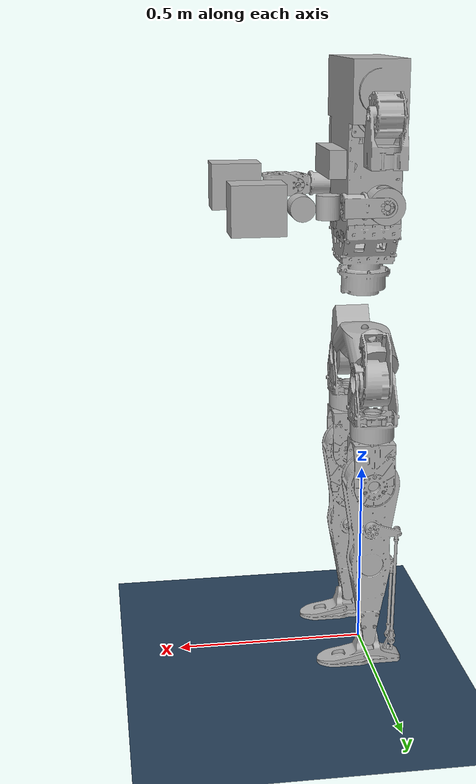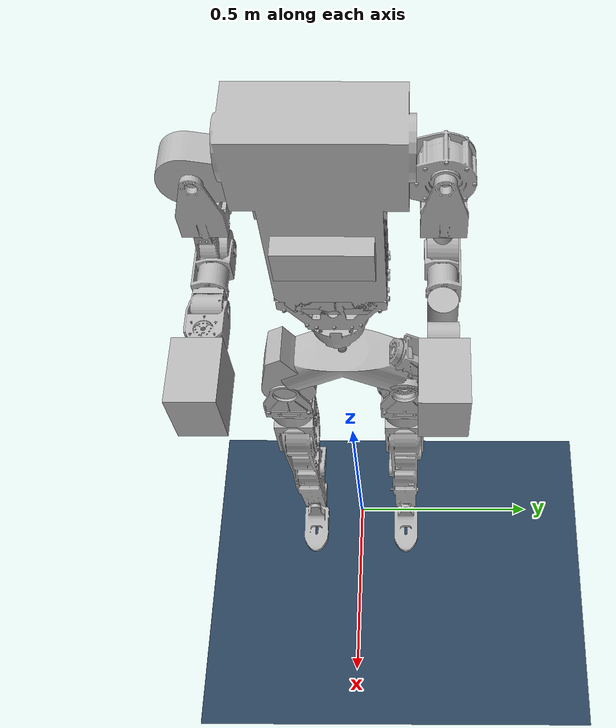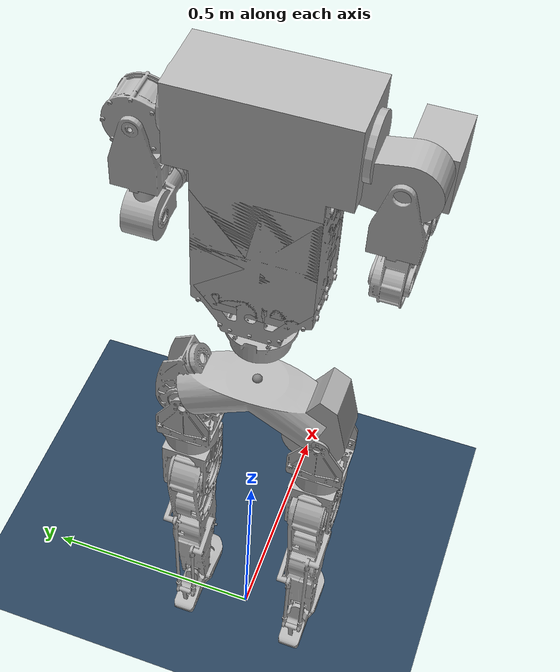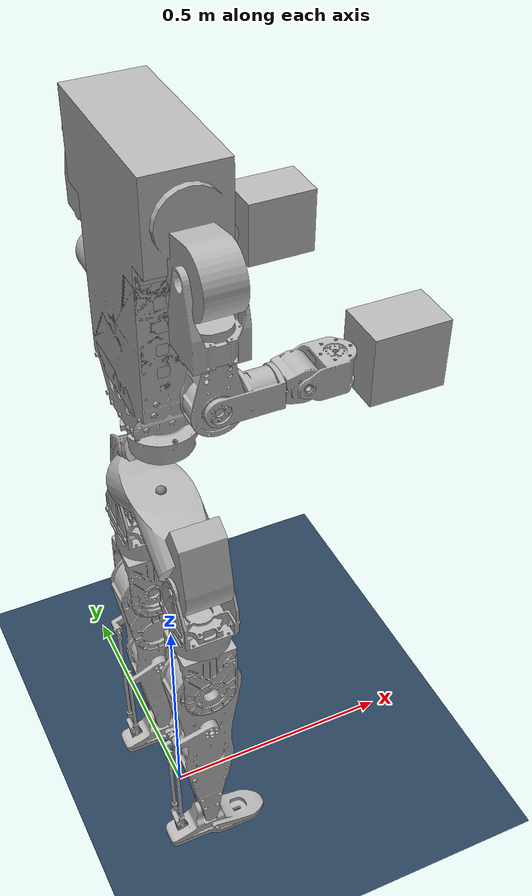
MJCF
<?xml version='1.0' encoding='utf-8'?>
<mujoco model="robot8">
  <default>
    <default class="robot">
      <default class="visual">
        <geom contype="0" conaffinity="0" group="2" />
      </default>
      <default class="collision">
        <geom contype="0" conaffinity="1" group="3" />
      </default>
    </default>
    <default class="floor">
      <geom type="plane" size="0 0 0.05" material="groundplane" />
    </default>
  </default>
  <compiler angle="radian" meshdir="." balanceinertia="true" />
  <visual>
    <global offwidth="3840" offheight="2160" />
  </visual>
  <worldbody>
    <body name="pelvis_link" childclass="robot" pos="0 0 0.8883">
      <geom name="pelvis_link_collision" type="mesh" mesh="collision_pelvis_link" class="collision" />
      <geom name="pelvis_link_visual" type="mesh" mesh="pelvis_link_pelvis_link" material="default_material" class="visual" />
      <site name="imu_in_pelvis" size="0.01" pos="0 0 0" />
      <body name="right_hip_pitch_link" pos="0.0074336 -0.11245 0.0042898" quat="0.9659 0.2588 0 0">
        <inertial pos="2.851291e-03 -7.270662e-02 -7.549797e-02" mass="2.482675e+00" fullinertia="5.230052e-03 3.317421e-03 2.781066e-03 9.632072e-05 2.170916e-05 -4.154381e-04" />
        <joint name="right_hip_pitch_joint" type="hinge" range="-1 0.5" axis="0 1 0" actuatorfrcrange="-96 96" armature="0.04" />
        <geom name="right_hip_pitch_link_collision" type="mesh" mesh="collision_right_hip_pitch_link" class="collision" />
        <geom name="right_hip_pitch_link_visual" type="mesh" mesh="right_hip_pitch_link_right_hip_pitch_link" material="default_material" class="visual" />
        <body name="right_hip_roll_link" pos="0.0295 -0.07681 -0.080942" quat="0.9659 -0.2588 0 0">
          <inertial pos="-3.011412e-02 1.428602e-04 -1.059386e-01" mass="1.960130e+00" fullinertia="2.044478e-03 1.787449e-03 2.559671e-03 -4.613806e-17 2.183328e-05 1.681807e-06" />
          <joint name="right_hip_roll_joint" type="hinge" range="-0.5 0.5" axis="1 0 0" actuatorfrcrange="-96 96" armature="0.04" />
          <geom name="right_hip_roll_link_collision" type="mesh" mesh="collision_right_hip_roll_link" class="collision" />
          <geom name="right_hip_roll_link_visual" type="mesh" mesh="right_hip_roll_link_right_hip_roll_link" material="default_material" class="visual" />
          <body name="right_hip_yaw_link" pos="-0.0295 0 -0.1463">
            <inertial pos="1.372798e-04 2.740290e-03 -6.347166e-02" mass="6.214370e-01" fullinertia="1.020055e-03 1.407074e-03 8.678616e-04 1.345473e-07 -8.304894e-07 -1.010576e-05" />
            <joint name="right_hip_yaw_joint" type="hinge" range="-0.5 0.5" axis="0 0 1" actuatorfrcrange="-48 48" armature="0.02" />
            <geom name="right_hip_yaw_link_collision" type="mesh" mesh="collision_right_hip_yaw_link" class="collision" />
            <geom name="right_hip_yaw_link_visual" type="mesh" mesh="right_hip_yaw_link_right_hip_yaw_link" material="default_material" class="visual" />
            <body name="right_knee_link" pos="0 -0.032 -0.12269">
              <inertial pos="-3.615045e-03 3.366082e-02 -1.255761e-01" mass="5.873170e+00" fullinertia="1.585211e-02 1.985684e-02 5.487068e-03 1.179977e-07 1.979255e-06 2.332131e-05" />
              <joint name="right_knee_joint" type="hinge" range="-0.5 1" axis="0 1 0" actuatorfrcrange="-96 96" armature="0.04" />
              <geom name="right_knee_link_collision" type="mesh" mesh="collision_right_knee_link" class="collision" />
              <geom name="right_knee_link_visual" type="mesh" mesh="right_knee_link_right_knee_link" material="default_material" class="visual" />
              <body name="right_ankle_pitch_link" pos="-5.1941E-05 0.035 -0.4435">
                <inertial pos="5.364409e-09 -5.364413e-09 0.000000e+00" mass="1.481921e-01" fullinertia="2.726450e-05 2.726450e-05 4.854011e-05 -4.351823e-18 -2.144078e-12 -2.144078e-12" />
                <joint name="right_ankle_pitch_joint" type="hinge" range="-0.5 0.5" axis="0 1 0" actuatorfrcrange="-29 29" armature="0.012" />
                <geom name="right_ankle_pitch_link_collision" type="mesh" mesh="collision_right_ankle_pitch_link" class="collision" />
                <geom name="right_ankle_pitch_link_visual" type="mesh" mesh="right_ankle_pitch_link_right_ankle_pitch_link" material="default_material" class="visual" />
                <body name="right_ankle_roll_link">
                  <inertial pos="1.083003e-02 3.951433e-07 -4.405085e-02" mass="6.288107e-01" fullinertia="2.386819e-04 1.667869e-03 1.801760e-03 -2.314975e-09 4.463140e-05 -8.286391e-11" />
                  <joint name="right_ankle_roll_joint" type="hinge" range="-0.5 0.5" axis="1 0 0" actuatorfrcrange="-29 29" armature="0.012" />
                  <geom name="right_ankle_roll_link_collision" type="mesh" mesh="collision_right_ankle_roll_link" class="collision" />
                  <geom name="right_ankle_roll_link_visual" type="mesh" mesh="right_ankle_roll_link_right_ankle_roll_link" material="default_material" class="visual" />
                </body>
              </body>
            </body>
          </body>
        </body>
      </body>
      <body name="left_hip_pitch_link" pos="0.0074336 0.11245 0.0042898" quat="0.9659 -0.2588 0 0">
        <inertial pos="3.103628e-03 7.273415e-02 -7.530297e-02" mass="2.476973e+00" fullinertia="5.230662e-03 3.314818e-03 2.779870e-03 -9.627197e-05 2.161898e-05 4.156594e-04" />
        <joint name="left_hip_pitch_joint" type="hinge" range="-1 0.5" axis="0 1 0" actuatorfrcrange="-96 96" armature="0.04" />
        <geom name="left_hip_pitch_link_collision" type="mesh" mesh="collision_left_hip_pitch_link" class="collision" />
        <geom name="left_hip_pitch_link_visual" type="mesh" mesh="left_hip_pitch_link_left_hip_pitch_link" material="default_material" class="visual" />
        <body name="left_hip_roll_link" pos="0.0295 0.07681 -0.080942" quat="0.9659 0.2588 0 0">
          <inertial pos="-3.011412e-02 1.428602e-04 -1.059386e-01" mass="1.960130e+00" fullinertia="2.044478e-03 1.787449e-03 2.559671e-03 -3.491665e-17 2.183328e-05 1.681807e-06" />
          <joint name="left_hip_roll_joint" type="hinge" range="-0.5 0.5" axis="1 0 0" actuatorfrcrange="-96 96" armature="0.04" />
          <geom name="left_hip_roll_link_collision" type="mesh" mesh="collision_left_hip_roll_link" class="collision" />
          <geom name="left_hip_roll_link_visual" type="mesh" mesh="left_hip_roll_link_left_hip_roll_link" material="default_material" class="visual" />
          <body name="left_hip_yaw_link" pos="-0.0295 0 -0.1463">
            <inertial pos="1.372798e-04 -2.740290e-03 -6.347166e-02" mass="6.214370e-01" fullinertia="1.020055e-03 1.407074e-03 8.678616e-04 -1.345525e-07 -8.304894e-07 1.010576e-05" />
            <joint name="left_hip_yaw_joint" type="hinge" range="-0.5 0.5" axis="0 0 1" actuatorfrcrange="-48 48" armature="0.02" />
            <geom name="left_hip_yaw_link_collision" type="mesh" mesh="collision_left_hip_yaw_link" class="collision" />
            <geom name="left_hip_yaw_link_visual" type="mesh" mesh="left_hip_yaw_link_left_hip_yaw_link" material="default_material" class="visual" />
            <body name="left_knee_link" pos="0 0.034125 -0.1227">
              <inertial pos="-3.322424e-03 -3.578619e-02 -1.265389e-01" mass="5.877917e+00" fullinertia="1.585882e-02 1.985710e-02 5.488483e-03 1.953584e-07 -3.300153e-06 -2.345089e-05" />
              <joint name="left_knee_joint" type="hinge" range="-0.5 1" axis="0 1 0" actuatorfrcrange="-96 96" armature="0.04" />
              <geom name="left_knee_link_collision" type="mesh" mesh="collision_left_knee_link" class="collision" />
              <geom name="left_knee_link_visual" type="mesh" mesh="left_knee_link_left_knee_link" material="default_material" class="visual" />
              <body name="left_ankle_pitch_link" pos="0 -0.036877 -0.4435">
                <inertial pos="5.364411e-09 -5.364404e-09 -5.107026e-15" mass="1.481921e-01" fullinertia="2.726450e-05 2.726450e-05 4.854011e-05 -4.950226e-18 3.683798e-12 -2.144078e-12" />
                <joint name="left_ankle_pitch_joint" type="hinge" range="-0.5 0.5" axis="0 1 0" actuatorfrcrange="-29 29" armature="0.012" />
                <geom name="left_ankle_pitch_link_collision" type="mesh" mesh="collision_left_ankle_pitch_link" class="collision" />
                <geom name="left_ankle_pitch_link_visual" type="mesh" mesh="left_ankle_pitch_link_left_ankle_pitch_link" material="default_material" class="visual" />
                <body name="left_ankle_roll_link">
                  <inertial pos="1.083009e-02 3.719836e-07 -4.405086e-02" mass="6.288094e-01" fullinertia="2.386813e-04 1.667866e-03 1.801757e-03 -2.594108e-09 4.463167e-05 2.016767e-10" />
                  <joint name="left_ankle_roll_joint" type="hinge" range="-0.5 0.5" axis="1 0 0" actuatorfrcrange="-29 29" armature="0.012" />
                  <geom name="left_ankle_roll_link_collision" type="mesh" mesh="collision_left_ankle_roll_link" class="collision" />
                  <geom name="left_ankle_roll_link_visual" type="mesh" mesh="left_ankle_roll_link_left_ankle_roll_link" material="default_material" class="visual" />
                </body>
              </body>
            </body>
          </body>
        </body>
      </body>
      <body name="waist_yaw_link" pos="0.0074336 0 0.095182">
        <inertial pos="8.134900e-03 -2.482000e-04 2.834100e-01" mass="1.486400e+01" fullinertia="6.528500e-02 4.811100e-02 4.465800e-02 1.802000e-07 -2.143500e-05 -2.965000e-06" />
        <joint name="waist_yaw_joint" type="hinge" range="-1 1" axis="0 0 1" actuatorfrcrange="-48 48" armature="0.02" />
        <geom name="waist_yaw_link_collision" type="mesh" mesh="collision_waist_yaw_link" class="collision" />
        <geom name="waist_yaw_link_visual" type="mesh" mesh="waist_yaw_link_waist_yaw_link" material="default_material" class="visual" />
        <body name="waist_roll_link" pos="0 0 0.1409">
          <inertial pos="6.673100e-02 3.301800e-15 -2.775600e-17" mass="2.149700e-03" fullinertia="1.019700e-08 4.023200e-08 4.023200e-08 -1.293600e-21 -1.051000e-24 -3.741400e-26" />
          <geom name="waist_roll_link_collision" type="mesh" mesh="collision_waist_roll_link" class="collision" />
          <geom name="waist_roll_link_visual" type="mesh" mesh="waist_roll_link_waist_roll_link" material="default_material" class="visual" />
          <body name="torso_link">
            <inertial pos="3.469400e-18 4.447400e-16 -5.276900e-02" mass="2.149700e-03" fullinertia="4.023200e-08 4.023200e-08 1.019700e-08 -1.919700e-25 -4.383000e-24 -2.960900e-24" />
            <geom name="torso_link_collision" type="mesh" mesh="collision_torso_link" class="collision" />
            <geom name="torso_link_visual" type="mesh" mesh="torso_link_torso_link" material="default_material" class="visual" />
            <body name="right_shoulder_pitch_link" pos="0 -0.1445 0.3245">
              <inertial pos="-7.984549e-04 -1.862673e-02 1.720146e-04" mass="2.557416e+00" fullinertia="2.517872e-03 2.260213e-03 2.133541e-03 -3.983996e-05 -8.750972e-06 -4.340031e-07" />
              <joint name="right_shoulder_pitch_joint" type="hinge" range="-2 2" axis="0 1 0" actuatorfrcrange="-48 48" armature="0.02" />
              <geom name="right_shoulder_pitch_link_collision" type="mesh" mesh="collision_right_shoulder_pitch_link" class="collision" />
              <geom name="right_shoulder_pitch_link_visual" type="mesh" mesh="right_shoulder_pitch_link_right_shoulder_pitch_link" material="default_material" class="visual" />
              <body name="right_shoulder_roll_link" pos="0.0010009 -0.07 0">
                <inertial pos="7.427735e-04 -6.884930e-10 -8.785344e-02" mass="8.767783e-01" fullinertia="9.390930e-04 8.083363e-04 6.765176e-04 1.429287e-10 6.121165e-06 1.391971e-10" />
                <joint name="right_shoulder_roll_joint" type="hinge" range="-3 0" axis="1 0 0" actuatorfrcrange="-48 48" armature="0.02" />
                <geom name="right_shoulder_roll_link_collision" type="mesh" mesh="collision_right_shoulder_roll_link" class="collision" />
                <geom name="right_shoulder_roll_link_visual" type="mesh" mesh="right_shoulder_roll_link_right_shoulder_roll_link" material="default_material" class="visual" />
                <body name="right_shoulder_yaw_link" pos="0 0 -0.1215">
                  <inertial pos="3.419245e-04 -4.168101e-04 -7.932543e-02" mass="8.095493e-01" fullinertia="5.669025e-04 7.578699e-04 4.648783e-04 -5.550582e-08 7.355877e-09 -1.767385e-05" />
                  <joint name="right_shoulder_yaw_joint" type="hinge" range="-1.5 0.5" axis="0 0 1" actuatorfrcrange="-29 29" armature="0.012" />
                  <geom name="right_shoulder_yaw_link_collision" type="mesh" mesh="collision_right_shoulder_yaw_link" class="collision" />
                  <geom name="right_shoulder_yaw_link_visual" type="mesh" mesh="right_shoulder_yaw_link_right_shoulder_yaw_link" material="default_material" class="visual" />
                  <body name="right_elbow_link" pos="0 0 -0.0885">
                    <inertial pos="6.185003e-02 -1.045038e-03 4.029419e-05" mass="4.969697e-01" fullinertia="2.292525e-04 3.545232e-04 3.647221e-04 -2.017591e-05 -4.800208e-10 -4.005728e-09" />
                    <joint name="right_elbow_joint" type="hinge" range="0 3" axis="0 1 0" actuatorfrcrange="-29 29" armature="0.012" />
                    <geom name="right_elbow_link_collision" type="mesh" mesh="collision_right_elbow_link" class="collision" />
                    <geom name="right_elbow_link_visual" type="mesh" mesh="right_elbow_link_right_elbow_link" material="default_material" class="visual" />
                    <body name="right_wrist_roll_link" pos="0.1005 0 0">
                      <inertial pos="3.598113e-02 -1.448435e-03 2.883170e-07" mass="3.922510e-01" fullinertia="1.805598e-04 1.744848e-04 1.898739e-04 4.356605e-06 -3.368103e-09 1.915070e-09" />
                      <joint name="right_wrist_roll_joint" type="hinge" range="-1 1" axis="1 0 0" actuatorfrcrange="-12 12" armature="0.001" />
                      <geom name="right_wrist_roll_link_collision" type="mesh" mesh="collision_right_wrist_roll_link" class="collision" />
                      <geom name="right_wrist_roll_link_visual" type="mesh" mesh="right_wrist_roll_link_right_wrist_roll_link" material="default_material" class="visual" />
                      <body name="right_wrist_yaw_link" pos="0.0395 0 0">
                        <inertial pos="5.030711e-02 -1.318183e-03 -8.559664e-04" mass="5.039785e-01" fullinertia="2.408832e-04 2.665494e-04 2.890032e-04 1.726206e-06 -2.273157e-06 3.173818e-05" />
                        <joint name="right_wrist_yaw_joint" type="hinge" range="-1 1" axis="0 1 0" actuatorfrcrange="-12 12" armature="0.001" />
                        <geom name="right_wrist_yaw_link_collision" type="mesh" mesh="collision_right_wrist_yaw_link" class="collision" />
                        <geom name="right_wrist_yaw_link_visual" type="mesh" mesh="right_wrist_yaw_link_right_wrist_yaw_link" material="default_material" class="visual" />
                        <body name="right_wrist_pitch_link" pos="0.06 0 0">
                          <inertial pos="2.984486e-02 1.738477e-09 2.748858e-03" mass="1.018444e-01" fullinertia="4.190877e-05 3.487658e-05 3.328346e-05 -1.771119e-12 -3.966417e-07 5.752220e-13" />
                          <joint name="right_wrist_pitch_joint" type="hinge" range="-1 1" axis="0 0 1" actuatorfrcrange="-12 12" armature="0.001" />
                          <geom name="right_wrist_pitch_link_collision" type="mesh" mesh="collision_right_wrist_pitch_link" class="collision" />
                          <geom name="right_wrist_pitch_link_visual" type="mesh" mesh="right_wrist_pitch_link_right_wrist_pitch_link" material="default_material" class="visual" />
                        </body>
                      </body>
                    </body>
                  </body>
                </body>
              </body>
            </body>
            <body name="left_shoulder_pitch_link" pos="0 0.1445 0.3245">
              <inertial pos="-6.080708e-04 1.884962e-02 3.658989e-04" mass="2.568560e+00" fullinertia="2.550273e-03 2.271530e-03 2.135081e-03 4.097817e-05 3.180192e-06 3.618582e-06" />
              <joint name="left_shoulder_pitch_joint" type="hinge" range="-2 2" axis="0 1 0" actuatorfrcrange="-48 48" armature="0.02" />
              <geom name="left_shoulder_pitch_link_collision" type="mesh" mesh="collision_left_shoulder_pitch_link" class="collision" />
              <geom name="left_shoulder_pitch_link_visual" type="mesh" mesh="left_shoulder_pitch_link_left_shoulder_pitch_link" material="default_material" class="visual" />
              <body name="left_shoulder_roll_link" pos="0.0010009 0.07 0">
                <inertial pos="7.427735e-04 -6.884824e-10 -8.785344e-02" mass="8.767783e-01" fullinertia="9.390930e-04 8.083363e-04 6.765176e-04 1.429287e-10 6.121165e-06 1.391971e-10" />
                <joint name="left_shoulder_roll_joint" type="hinge" range="0 3" axis="1 0 0" actuatorfrcrange="-48 48" armature="0.02" />
                <geom name="left_shoulder_roll_link_collision" type="mesh" mesh="collision_left_shoulder_roll_link" class="collision" />
                <geom name="left_shoulder_roll_link_visual" type="mesh" mesh="left_shoulder_roll_link_left_shoulder_roll_link" material="default_material" class="visual" />
                <body name="left_shoulder_yaw_link" pos="0 0 -0.1215">
                  <inertial pos="2.642164e-04 4.201003e-04 -7.942572e-02" mass="8.074728e-01" fullinertia="5.694276e-04 7.665871e-04 4.717931e-04 1.099504e-06 -4.221605e-06 1.830800e-05" />
                  <joint name="left_shoulder_yaw_joint" type="hinge" range="-0.5 1.5" axis="0 0 1" actuatorfrcrange="-29 29" armature="0.012" />
                  <geom name="left_shoulder_yaw_link_collision" type="mesh" mesh="collision_left_shoulder_yaw_link" class="collision" />
                  <geom name="left_shoulder_yaw_link_visual" type="mesh" mesh="left_shoulder_yaw_link_left_shoulder_yaw_link" material="default_material" class="visual" />
                  <body name="left_elbow_link" pos="0 0.001125 -0.0885">
                    <inertial pos="6.185864e-02 -7.950896e-05 4.029419e-05" mass="4.969697e-01" fullinertia="2.292525e-04 3.545232e-04 3.647221e-04 2.017979e-05 -4.800208e-10 3.304747e-08" />
                    <joint name="left_elbow_joint" type="hinge" range="0 3" axis="0 1 0" actuatorfrcrange="-29 29" armature="0.012" />
                    <geom name="left_elbow_link_collision" type="mesh" mesh="collision_left_elbow_link" class="collision" />
                    <geom name="left_elbow_link_visual" type="mesh" mesh="left_elbow_link_left_elbow_link" material="default_material" class="visual" />
                    <body name="left_wrist_roll_link" pos="0.1005 -0.001125 0">
                      <inertial pos="3.598113e-02 1.448433e-03 2.881593e-07" mass="3.922510e-01" fullinertia="1.805598e-04 1.744848e-04 1.898739e-04 -4.356608e-06 -3.240964e-08 -1.924738e-09" />
                      <joint name="left_wrist_roll_joint" type="hinge" range="-1 1" axis="1 0 0" actuatorfrcrange="-12 12" armature="0.001" />
                      <geom name="left_wrist_roll_link_collision" type="mesh" mesh="collision_left_wrist_roll_link" class="collision" />
                      <geom name="left_wrist_roll_link_visual" type="mesh" mesh="left_wrist_roll_link_left_wrist_roll_link" material="default_material" class="visual" />
                      <body name="left_wrist_yaw_link" pos="0.0395 0 0">
                        <inertial pos="5.030716e-02 1.318190e-03 -8.559664e-04" mass="5.039785e-01" fullinertia="2.408419e-04 2.665908e-04 2.890032e-04 -1.571917e-06 -2.272658e-06 -3.173811e-05" />
                        <joint name="left_wrist_yaw_joint" type="hinge" range="-1 1" axis="0 1 0" actuatorfrcrange="-12 12" armature="0.001" />
                        <geom name="left_wrist_yaw_link_collision" type="mesh" mesh="collision_left_wrist_yaw_link" class="collision" />
                        <geom name="left_wrist_yaw_link_visual" type="mesh" mesh="left_wrist_yaw_link_left_wrist_yaw_link" material="default_material" class="visual" />
                        <body name="left_wrist_pitch_link" pos="0.06 0 0">
                          <inertial pos="2.984486e-02 1.738482e-09 2.748858e-03" mass="1.018444e-01" fullinertia="4.190877e-05 3.487658e-05 3.328346e-05 -1.771119e-12 -3.966417e-07 5.752220e-13" />
                          <joint name="left_wrist_pitch_joint" type="hinge" range="-1 1" axis="0 0 1" actuatorfrcrange="-12 12" armature="0.001" />
                          <geom name="left_wrist_pitch_link_collision" type="mesh" mesh="collision_left_wrist_pitch_link" class="collision" />
                          <geom name="left_wrist_pitch_link_visual" type="mesh" mesh="left_wrist_pitch_link_left_wrist_pitch_link" material="default_material" class="visual" />
                        </body>
                      </body>
                    </body>
                  </body>
                </body>
              </body>
            </body>
          </body>
        </body>
      </body>
      <freejoint name="floating_base" />
      <inertial pos="5.034353e-03 1.300917e-04 2.253638e-02" mass="4.702896e+00" fullinertia="5.112003e-03 6.643517e-03 5.300545e-03 6.969807e-07 -8.271640e-06 5.172334e-08" />
    </body>
    <light pos="0 0 2." dir="0 0 -1" directional="true" />
    <geom name="floor" class="floor" size="0 0 0.05" />
  </worldbody>
  <asset>
    <material name="default_material" rgba="0.7 0.7 0.7 1" />
    <mesh name="collision_pelvis_link" file="meshes/pelvis_link.STL" />
    <mesh name="pelvis_link_pelvis_link" file="meshes/pelvis_link.STL" />
    <mesh name="collision_right_hip_pitch_link" file="meshes/right_hip_pitch_link.STL" />
    <mesh name="right_hip_pitch_link_right_hip_pitch_link" file="meshes/right_hip_pitch_link.STL" />
    <mesh name="collision_right_hip_roll_link" file="meshes/right_hip_roll_link.STL" />
    <mesh name="right_hip_roll_link_right_hip_roll_link" file="meshes/right_hip_roll_link.STL" />
    <mesh name="collision_right_hip_yaw_link" file="meshes/right_hip_yaw_link.STL" />
    <mesh name="right_hip_yaw_link_right_hip_yaw_link" file="meshes/right_hip_yaw_link.STL" />
    <mesh name="collision_right_knee_link" file="meshes/right_knee_link.STL" />
    <mesh name="right_knee_link_right_knee_link" file="meshes/right_knee_link.STL" />
    <mesh name="collision_right_ankle_pitch_link" file="meshes/right_ankle_pitch_link.STL" />
    <mesh name="right_ankle_pitch_link_right_ankle_pitch_link" file="meshes/right_ankle_pitch_link.STL" />
    <mesh name="collision_right_ankle_roll_link" file="meshes/right_ankle_roll_link.STL" />
    <mesh name="right_ankle_roll_link_right_ankle_roll_link" file="meshes/right_ankle_roll_link.STL" />
    <mesh name="collision_left_hip_pitch_link" file="meshes/left_hip_pitch_link.STL" />
    <mesh name="left_hip_pitch_link_left_hip_pitch_link" file="meshes/left_hip_pitch_link.STL" />
    <mesh name="collision_left_hip_roll_link" file="meshes/left_hip_roll_link.STL" />
    <mesh name="left_hip_roll_link_left_hip_roll_link" file="meshes/left_hip_roll_link.STL" />
    <mesh name="collision_left_hip_yaw_link" file="meshes/left_hip_yaw_link.STL" />
    <mesh name="left_hip_yaw_link_left_hip_yaw_link" file="meshes/left_hip_yaw_link.STL" />
    <mesh name="collision_left_knee_link" file="meshes/left_knee_link.STL" />
    <mesh name="left_knee_link_left_knee_link" file="meshes/left_knee_link.STL" />
    <mesh name="collision_left_ankle_pitch_link" file="meshes/left_ankle_pitch_link.STL" />
    <mesh name="left_ankle_pitch_link_left_ankle_pitch_link" file="meshes/left_ankle_pitch_link.STL" />
    <mesh name="collision_left_ankle_roll_link" file="meshes/left_ankle_roll_link.STL" />
    <mesh name="left_ankle_roll_link_left_ankle_roll_link" file="meshes/left_ankle_roll_link.STL" />
    <mesh name="collision_waist_yaw_link" file="meshes/waist_yaw_link.STL" />
    <mesh name="waist_yaw_link_waist_yaw_link" file="meshes/waist_yaw_link.STL" />
    <mesh name="collision_waist_roll_link" file="meshes/waist_roll_link.STL" />
    <mesh name="waist_roll_link_waist_roll_link" file="meshes/waist_roll_link.STL" />
    <mesh name="collision_torso_link" file="meshes/torso_link.STL" />
    <mesh name="torso_link_torso_link" file="meshes/torso_link.STL" />
    <mesh name="collision_right_shoulder_pitch_link" file="meshes/right_shoulder_pitch_link.STL" />
    <mesh name="right_shoulder_pitch_link_right_shoulder_pitch_link" file="meshes/right_shoulder_pitch_link.STL" />
    <mesh name="collision_right_shoulder_roll_link" file="meshes/right_shoulder_roll_link.STL" />
    <mesh name="right_shoulder_roll_link_right_shoulder_roll_link" file="meshes/right_shoulder_roll_link.STL" />
    <mesh name="collision_right_shoulder_yaw_link" file="meshes/right_shoulder_yaw_link.STL" />
    <mesh name="right_shoulder_yaw_link_right_shoulder_yaw_link" file="meshes/right_shoulder_yaw_link.STL" />
    <mesh name="collision_right_elbow_link" file="meshes/right_elbow_link.STL" />
    <mesh name="right_elbow_link_right_elbow_link" file="meshes/right_elbow_link.STL" />
    <mesh name="collision_right_wrist_roll_link" file="meshes/right_wrist_roll_link.STL" />
    <mesh name="right_wrist_roll_link_right_wrist_roll_link" file="meshes/right_wrist_roll_link.STL" />
    <mesh name="collision_right_wrist_yaw_link" file="meshes/right_wrist_yaw_link.STL" />
    <mesh name="right_wrist_yaw_link_right_wrist_yaw_link" file="meshes/right_wrist_yaw_link.STL" />
    <mesh name="collision_right_wrist_pitch_link" file="meshes/right_wrist_pitch_link.STL" />
    <mesh name="right_wrist_pitch_link_right_wrist_pitch_link" file="meshes/right_wrist_pitch_link.STL" />
    <mesh name="collision_left_shoulder_pitch_link" file="meshes/left_shoulder_pitch_link.STL" />
    <mesh name="left_shoulder_pitch_link_left_shoulder_pitch_link" file="meshes/left_shoulder_pitch_link.STL" />
    <mesh name="collision_left_shoulder_roll_link" file="meshes/left_shoulder_roll_link.STL" />
    <mesh name="left_shoulder_roll_link_left_shoulder_roll_link" file="meshes/left_shoulder_roll_link.STL" />
    <mesh name="collision_left_shoulder_yaw_link" file="meshes/left_shoulder_yaw_link.STL" />
    <mesh name="left_shoulder_yaw_link_left_shoulder_yaw_link" file="meshes/left_shoulder_yaw_link.STL" />
    <mesh name="collision_left_elbow_link" file="meshes/left_elbow_link.STL" />
    <mesh name="left_elbow_link_left_elbow_link" file="meshes/left_elbow_link.STL" />
    <mesh name="collision_left_wrist_roll_link" file="meshes/left_wrist_roll_link.STL" />
    <mesh name="left_wrist_roll_link_left_wrist_roll_link" file="meshes/left_wrist_roll_link.STL" />
    <mesh name="collision_left_wrist_yaw_link" file="meshes/left_wrist_yaw_link.STL" />
    <mesh name="left_wrist_yaw_link_left_wrist_yaw_link" file="meshes/left_wrist_yaw_link.STL" />
    <mesh name="collision_left_wrist_pitch_link" file="meshes/left_wrist_pitch_link.STL" />
    <mesh name="left_wrist_pitch_link_left_wrist_pitch_link" file="meshes/left_wrist_pitch_link.STL" />
    <texture type="2d" name="groundplane" builtin="checker" mark="edge" rgb1="0.2 0.3 0.4" rgb2="0.1 0.2 0.3" markrgb="0.8 0.8 0.8" width="300" height="300" />
    <material name="groundplane" texture="groundplane" texuniform="true" texrepeat="5 5" reflectance="0.2" />
    <texture type="skybox" builtin="gradient" rgb1="0.3 0.5 0.7" rgb2="0 0 0" width="512" height="3072" />
  </asset>
  <actuator>
    <motor name="right_hip_pitch_joint" joint="right_hip_pitch_joint" />
    <motor name="right_hip_roll_joint" joint="right_hip_roll_joint" />
    <motor name="right_hip_yaw_joint" joint="right_hip_yaw_joint" />
    <motor name="right_knee_joint" joint="right_knee_joint" />
    <motor name="right_ankle_pitch_joint" joint="right_ankle_pitch_joint" />
    <motor name="right_ankle_roll_joint" joint="right_ankle_roll_joint" />
    <motor name="left_hip_pitch_joint" joint="left_hip_pitch_joint" />
    <motor name="left_hip_roll_joint" joint="left_hip_roll_joint" />
    <motor name="left_hip_yaw_joint" joint="left_hip_yaw_joint" />
    <motor name="left_knee_joint" joint="left_knee_joint" />
    <motor name="left_ankle_pitch_joint" joint="left_ankle_pitch_joint" />
    <motor name="left_ankle_roll_joint" joint="left_ankle_roll_joint" />
    <motor name="waist_yaw_joint" joint="waist_yaw_joint" />
    <motor name="right_shoulder_pitch_joint" joint="right_shoulder_pitch_joint" />
    <motor name="right_shoulder_roll_joint" joint="right_shoulder_roll_joint" />
    <motor name="right_shoulder_yaw_joint" joint="right_shoulder_yaw_joint" />
    <motor name="right_elbow_joint" joint="right_elbow_joint" />
    <motor name="right_wrist_roll_joint" joint="right_wrist_roll_joint" />
    <motor name="right_wrist_yaw_joint" joint="right_wrist_yaw_joint" />
    <motor name="right_wrist_pitch_joint" joint="right_wrist_pitch_joint" />
    <motor name="left_shoulder_pitch_joint" joint="left_shoulder_pitch_joint" />
    <motor name="left_shoulder_roll_joint" joint="left_shoulder_roll_joint" />
    <motor name="left_shoulder_yaw_joint" joint="left_shoulder_yaw_joint" />
    <motor name="left_elbow_joint" joint="left_elbow_joint" />
    <motor name="left_wrist_roll_joint" joint="left_wrist_roll_joint" />
    <motor name="left_wrist_yaw_joint" joint="left_wrist_yaw_joint" />
    <motor name="left_wrist_pitch_joint" joint="left_wrist_pitch_joint" />
  </actuator>
  <visual>
    <rgba haze="0.15 0.25 0.35 1" />
  </visual>
  <statistic center="1.0 0.7 1.0" extent="0.8" />
  <visual>
    <headlight diffuse="0.6 0.6 0.6" ambient="0.1 0.1 0.1" specular="0.9 0.9 0.9" />
    <rgba haze="0.15 0.25 0.35 1" />
    <global azimuth="-140" elevation="-20" />
  </visual>
</mujoco>
